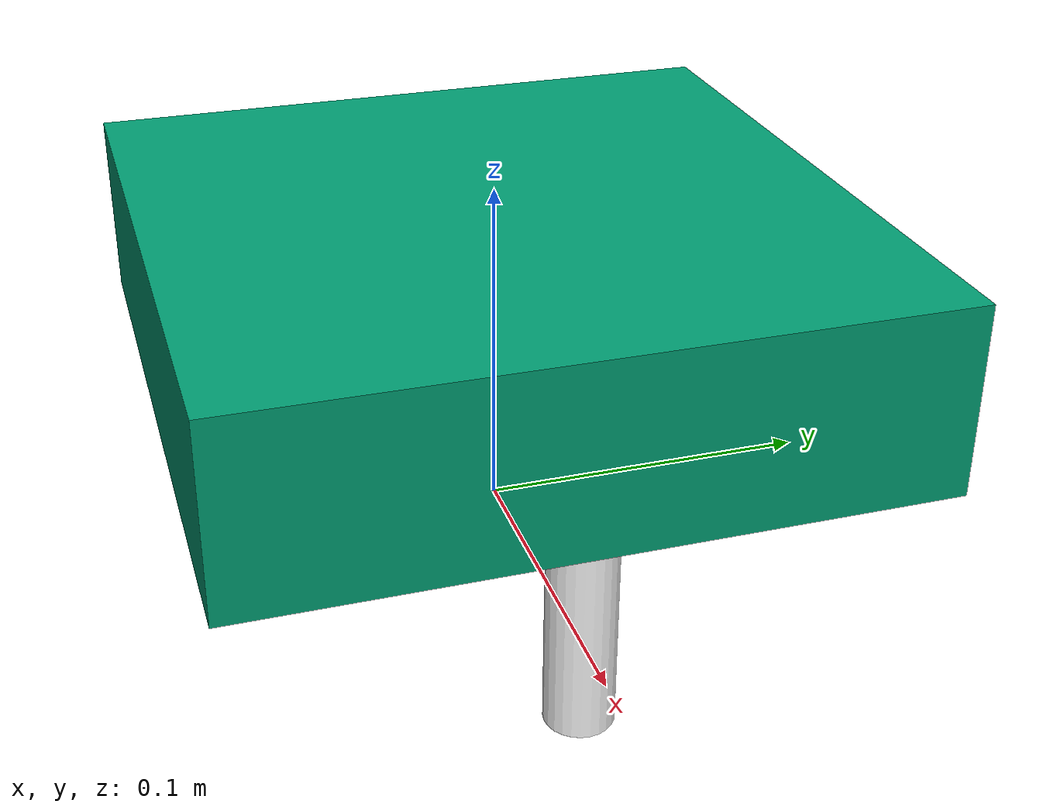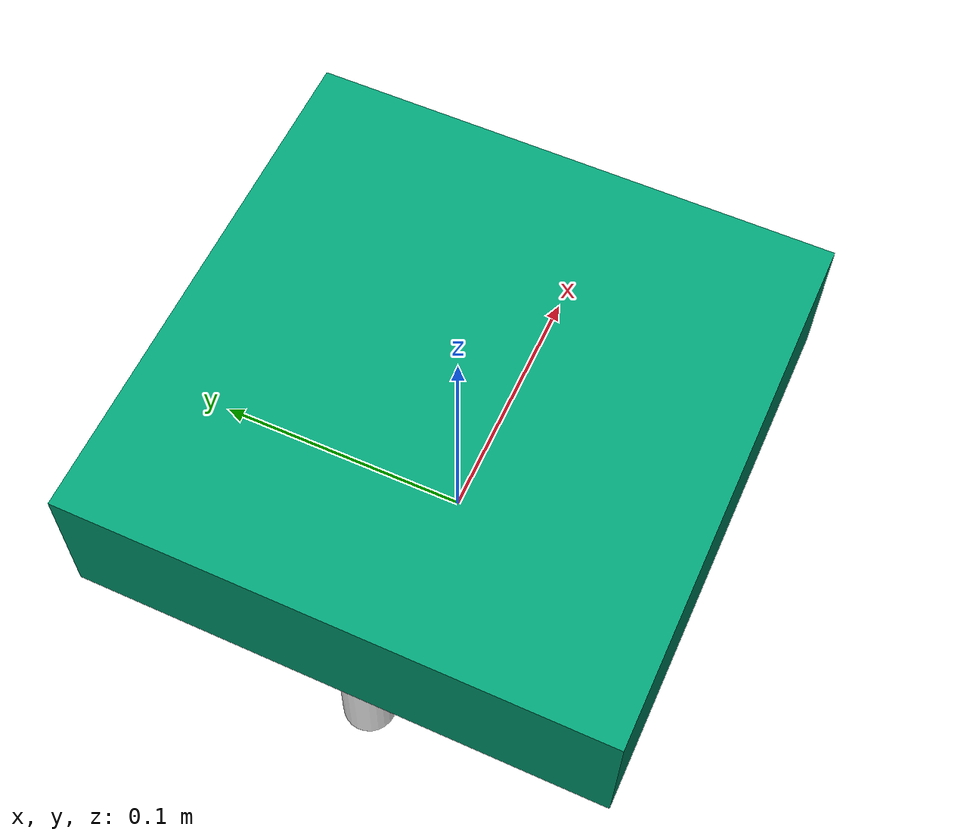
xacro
<?xml version="1.0"?>
<robot xmlns:xacro="http://www.ros.org/wiki/xacro">

    <xacro:property name="motor_wheel_diameter" value="0.050"/>
    <xacro:property name="motor_wheel_width" value="0.005"/>
    <xacro:property name="motor_wheel_separation" value="0.146"/> <!--center to center-->

    <xacro:property name="chassis_base_height" value="0.065"/>
    <xacro:property name="chassis_width" value="0.200"/>
    <xacro:property name="chassis_length" value="0.200"/>
    <xacro:property name="chassis_height" value="0.056"/>

    <material name="blue">
        <color rgba="0.2 0.2 1 1"/>
    </material>

    <material name="white">
        <color rgba="1 1 1 1"/>
    </material>

    <material name="grey">
        <color rgba="0.2 0.2 0.2 1"/>
    </material>

    <material name="brown">
        <color rgba="0.5 0.2 0 1"/>
    </material>

    <link name="base_link"></link>

    <joint name="synthetic_mass_joint" type="fixed">
        <parent link="base_link"/>
        <child link="synthetic_mass"/>
        <origin xyz="0 0 0" rpy="0 0 0"/>
    </joint>

    <link name="synthetic_mass">
        <inertial>
            <mass value="1.0"/>
            <origin xyz="0.0 0.0 0.025" rpy="0.0 0.0 0.0"/>
            <inertia ixx="0.0007" ixy="0.0" ixz="0.0" iyy="0.0007" iyz="0.0" izz="0.0008"/>
        </inertial>
    </link>

    <!-- CHASSIS -->

    <joint name="chassis_joint" type="fixed">
        <parent link="base_link"/>
        <child link="chassis"/>
        <origin xyz="0 0 ${chassis_base_height - motor_wheel_diameter/2 + chassis_height/2}"/>
    </joint>

    <link name="chassis">
        <visual>
            <geometry>
                <box size="${chassis_length} ${chassis_width} ${chassis_height}"/>
                <material name="brown"/>
            </geometry>
        </visual>
        <collision>
            <geometry>
                <box size="${chassis_length} ${chassis_width} ${chassis_height}"/>
            </geometry>
        </collision>
    </link>

    <!-- MOTOR WHEELS -->

    <joint name="left_wheel_joint" type="continuous">
        <parent link="base_link"/>
        <child link="motor_left_wheel"/>
        <origin xyz="0 ${motor_wheel_separation/2} 0" rpy="-${pi/2} 0 0"/>
        <axis xyz="0 0 1"/>
    </joint>

    <link name="motor_left_wheel">
        <visual>
            <geometry>
                <cylinder radius="${motor_wheel_diameter/2}" length="${motor_wheel_width}"/>
            </geometry>
            <material name="white"/>
        </visual>
        <collision>
            <geometry>
                <cylinder radius="${motor_wheel_diameter/2}" length="${motor_wheel_width}"/>
            </geometry>
        </collision>
        <inertial>
            <mass value="0.1"/>
            <origin xyz="0.0 0.0 0.01" rpy="0.0 0.0 0.0"/>
            <inertia ixx="0.00007" ixy="0.0" ixz="0.0" iyy="0.00007" iyz="0.0" izz="0.00008"/>
        </inertial>
    </link>

    <joint name="right_wheel_joint" type="continuous">
        <parent link="base_link"/>
        <child link="motor_right_wheel"/>
        <origin xyz="0 -${motor_wheel_separation/2} 0" rpy="${pi/2} 0 0"/>
        <axis xyz="0 0 -1"/>
    </joint>

    <link name="motor_right_wheel">
        <visual>
            <geometry>
                <cylinder radius="${motor_wheel_diameter/2}" length="${motor_wheel_width}"/>
            </geometry>
            <material name="white"/>
        </visual>
        <collision>
            <geometry>
                <cylinder radius="${motor_wheel_diameter/2}" length="${motor_wheel_width}"/>
            </geometry>
        </collision>
        <inertial>
            <mass value="0.1"/>
            <origin xyz="0.0 0.0 0.01" rpy="0.0 0.0 0.0"/>
            <inertia ixx="0.00007" ixy="0.0" ixz="0.0" iyy="0.00007" iyz="0.0" izz="0.00008"/>
        </inertial>
    </link>

    <!-- CASTER WHEELS -->

    <joint name="front_caster_wheel_joint" type="fixed">
        <parent link="base_link"/>
        <child link="front_caster_wheel"/>
        <origin xyz="0.080 0 ${chassis_base_height/2 - motor_wheel_diameter/2}" rpy="${pi} 0 0"/>
    </joint>

    <link name="front_caster_wheel">
        <visual>
            <geometry>
                <cylinder radius="0.01" length="${chassis_base_height}"/>
            </geometry>
            <material name="white"/>
        </visual>
        <collision>
            <geometry>
                <cylinder radius="0.01" length="${chassis_base_height-0.002}"/>
            </geometry>
        </collision>
    </link>

    <gazebo reference="front_caster_wheel">
        <material>Gazebo/Grey</material>
        <mu1 value="0.001"/>
        <mu2 value="0.001"/>
    </gazebo>

    <joint name="back_caster_wheel_joint" type="fixed">
        <parent link="base_link"/>
        <child link="back_caster_wheel"/>
        <origin xyz="-0.080 0 ${chassis_base_height/2 - motor_wheel_diameter/2}" rpy="0 0 0"/>
    </joint>

    <link name="back_caster_wheel">
        <visual>
            <geometry>
                <cylinder radius="0.01" length="${chassis_base_height}"/>
            </geometry>
            <material name="white"/>
        </visual>
        <collision>
            <geometry>
                <cylinder radius="0.01" length="${chassis_base_height-0.002}"/>
            </geometry>
        </collision>
    </link>

    <gazebo reference="back_caster_wheel">
        <material>Gazebo/Grey</material>
        <mu1 value="0.001"/>
        <mu2 value="0.001"/>
    </gazebo>

</robot>
